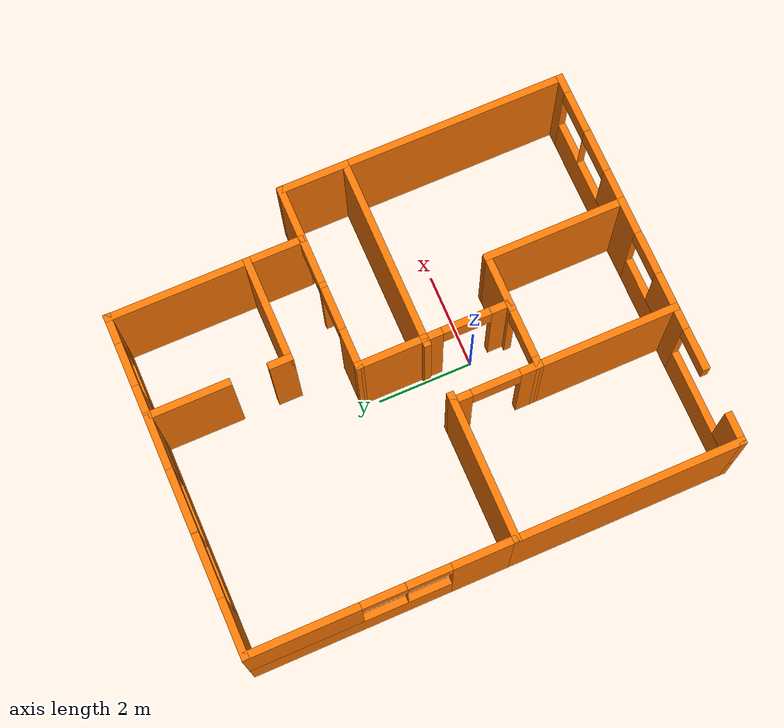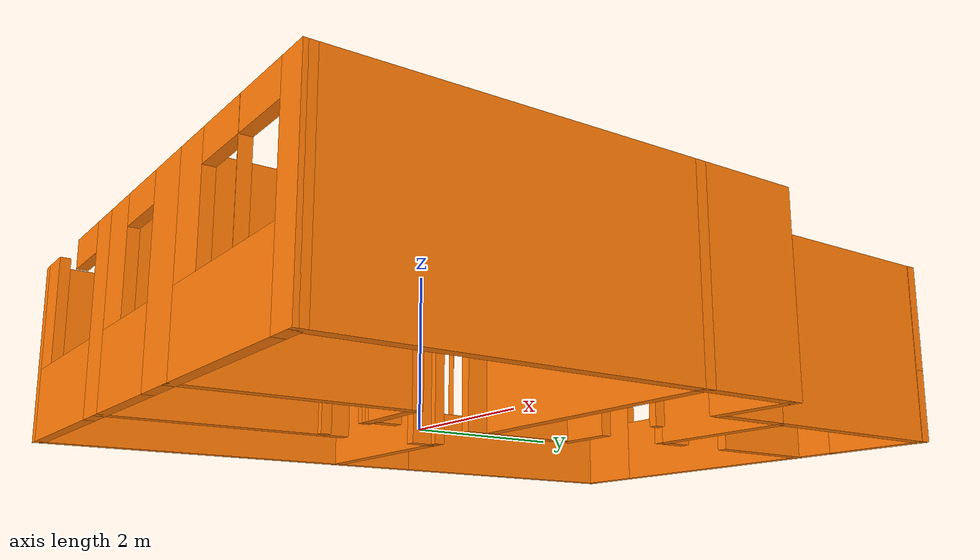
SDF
<?xml version='1.0'?>
<sdf version='1.6'>
  <model name='Berkach2'>
    <pose frame=''>0.008658 1.31545 0 0 -0 0</pose>
    <link name='Wall_111'>
      <collision name='Wall_111_Collision'>
        <geometry>
          <box>
            <size>4.76157 0.15 2.5</size>
          </box>
        </geometry>
        <pose frame=''>0 0 1.25 0 -0 0</pose>
      </collision>
      <visual name='Wall_111_Visual'>
        <pose frame=''>0 0 1.25 0 -0 0</pose>
        <geometry>
          <box>
            <size>4.76157 0.15 2.5</size>
          </box>
        </geometry>
        <material>
          <script>
            <uri>file://media/materials/scripts/gazebo.material</uri>
            <name>Gazebo/Grey</name>
          </script>
          <ambient>0.996078 0.47451 0.0196078 1</ambient>
        </material>
      </visual>
      <pose frame=''>4.02234 -2.67145 0 0 0 -1.5708</pose>
    </link>
    <link name='Wall_112'>
      <pose frame=''>2.59998 -4.97737 0 0 -0 3.14153</pose>
      <visual name='Wall_112_Visual_0'>
        <pose frame=''>-1.29221 0 1.25 0 -0 0</pose>
        <geometry>
          <box>
            <size>0.410287 0.15 2.5</size>
          </box>
        </geometry>
        <material>
          <script>
            <uri>file://media/materials/scripts/gazebo.material</uri>
            <name>Gazebo/Grey</name>
          </script>
          <ambient>0.996078 0.47451 0.0196078 1</ambient>
        </material>
      </visual>
      <collision name='Wall_112_Collision_0'>
        <geometry>
          <box>
            <size>0.410287 0.15 2.5</size>
          </box>
        </geometry>
        <pose frame=''>-1.29221 0 1.25 0 -0 0</pose>
      </collision>
      <visual name='Wall_112_Visual_1'>
        <pose frame=''>0.205143 0 0.5 0 -0 0</pose>
        <geometry>
          <box>
            <size>2.58443 0.15 1</size>
          </box>
        </geometry>
        <material>
          <script>
            <uri>file://media/materials/scripts/gazebo.material</uri>
            <name>Gazebo/Grey</name>
          </script>
          <ambient>0.996078 0.47451 0.0196078 1</ambient>
        </material>
      </visual>
      <collision name='Wall_112_Collision_1'>
        <geometry>
          <box>
            <size>2.58443 0.15 1</size>
          </box>
        </geometry>
        <pose frame=''>0.205143 0 0.5 0 -0 0</pose>
      </collision>
      <visual name='Wall_112_Visual_2'>
        <pose frame=''>-0.184502 0 1.75 0 -0 0</pose>
        <geometry>
          <box>
            <size>0.005138 0.15 1.5</size>
          </box>
        </geometry>
        <material>
          <script>
            <uri>file://media/materials/scripts/gazebo.material</uri>
            <name>Gazebo/Grey</name>
          </script>
          <ambient>0.996078 0.47451 0.0196078 1</ambient>
        </material>
      </visual>
      <collision name='Wall_112_Collision_2'>
        <geometry>
          <box>
            <size>0.005138 0.15 1.5</size>
          </box>
        </geometry>
        <pose frame=''>-0.184502 0 1.75 0 -0 0</pose>
      </collision>
      <visual name='Wall_112_Visual_3'>
        <pose frame=''>1.10771 0 1.75 0 -0 0</pose>
        <geometry>
          <box>
            <size>0.779291 0.15 1.5</size>
          </box>
        </geometry>
        <material>
          <script>
            <uri>file://media/materials/scripts/gazebo.material</uri>
            <name>Gazebo/Grey</name>
          </script>
          <ambient>0.996078 0.47451 0.0196078 1</ambient>
        </material>
      </visual>
      <collision name='Wall_112_Collision_3'>
        <geometry>
          <box>
            <size>0.779291 0.15 1.5</size>
          </box>
        </geometry>
        <pose frame=''>1.10771 0 1.75 0 -0 0</pose>
      </collision>
      <visual name='Wall_112_Visual_4'>
        <pose frame=''>-0.637071 0 2.3 0 -0 0</pose>
        <geometry>
          <box>
            <size>0.9 0.15 0.4</size>
          </box>
        </geometry>
        <material>
          <script>
            <uri>file://media/materials/scripts/gazebo.material</uri>
            <name>Gazebo/Grey</name>
          </script>
          <ambient>0.996078 0.47451 0.0196078 1</ambient>
        </material>
      </visual>
      <collision name='Wall_112_Collision_4'>
        <geometry>
          <box>
            <size>0.9 0.15 0.4</size>
          </box>
        </geometry>
        <pose frame=''>-0.637071 0 2.3 0 -0 0</pose>
      </collision>
      <visual name='Wall_112_Visual_5'>
        <pose frame=''>0.268067 0 2.3 0 -0 0</pose>
        <geometry>
          <box>
            <size>0.9 0.15 0.4</size>
          </box>
        </geometry>
        <material>
          <script>
            <uri>file://media/materials/scripts/gazebo.material</uri>
            <name>Gazebo/Grey</name>
          </script>
          <ambient>0.996078 0.47451 0.0196078 1</ambient>
        </material>
      </visual>
      <collision name='Wall_112_Collision_5'>
        <geometry>
          <box>
            <size>0.9 0.15 0.4</size>
          </box>
        </geometry>
        <pose frame=''>0.268067 0 2.3 0 -0 0</pose>
      </collision>
    </link>
    <link name='Wall_113'>
      <collision name='Wall_113_Collision'>
        <geometry>
          <box>
            <size>3 0.15 2.5</size>
          </box>
        </geometry>
        <pose frame=''>0 0 1.25 0 -0 0</pose>
      </collision>
      <visual name='Wall_113_Visual'>
        <pose frame=''>0 0 1.25 0 -0 0</pose>
        <geometry>
          <box>
            <size>3 0.15 2.5</size>
          </box>
        </geometry>
        <material>
          <script>
            <uri>file://media/materials/scripts/gazebo.material</uri>
            <name>Gazebo/Grey</name>
          </script>
          <ambient>0.996078 0.47451 0.0196078 1</ambient>
        </material>
      </visual>
      <pose frame=''>1.17763 -3.55229 0 0 -0 1.5708</pose>
    </link>
    <link name='Wall_114'>
      <collision name='Wall_114_Collision'>
        <geometry>
          <box>
            <size>1.16728 0.15 2.5</size>
          </box>
        </geometry>
        <pose frame=''>0 0 1.25 0 -0 0</pose>
      </collision>
      <visual name='Wall_114_Visual'>
        <pose frame=''>0 0 1.25 0 -0 0</pose>
        <geometry>
          <box>
            <size>1.16728 0.15 2.5</size>
          </box>
        </geometry>
        <material>
          <script>
            <uri>file://media/materials/scripts/gazebo.material</uri>
            <name>Gazebo/Grey</name>
          </script>
          <ambient>0.996078 0.47451 0.0196078 1</ambient>
        </material>
      </visual>
      <pose frame=''>0.668984 -2.12737 0 0 0 -3.14143</pose>
    </link>
    <link name='Wall_117'>
      <pose frame=''>0.002626 -4.97729 0 0 -0 3.14159</pose>
      <visual name='Wall_117_Visual_0'>
        <pose frame=''>-0.860145 0 1.25 0 -0 0</pose>
        <geometry>
          <box>
            <size>0.779711 0.15 2.5</size>
          </box>
        </geometry>
        <material>
          <script>
            <uri>file://media/materials/scripts/gazebo.material</uri>
            <name>Gazebo/Grey</name>
          </script>
          <ambient>0.996078 0.47451 0.0196078 1</ambient>
        </material>
      </visual>
      <collision name='Wall_117_Collision_0'>
        <geometry>
          <box>
            <size>0.779711 0.15 2.5</size>
          </box>
        </geometry>
        <pose frame=''>-0.860145 0 1.25 0 -0 0</pose>
      </collision>
      <visual name='Wall_117_Visual_1'>
        <pose frame=''>0.389855 0 0.5 0 -0 0</pose>
        <geometry>
          <box>
            <size>1.72029 0.15 1</size>
          </box>
        </geometry>
        <material>
          <script>
            <uri>file://media/materials/scripts/gazebo.material</uri>
            <name>Gazebo/Grey</name>
          </script>
          <ambient>0.996078 0.47451 0.0196078 1</ambient>
        </material>
      </visual>
      <collision name='Wall_117_Collision_1'>
        <geometry>
          <box>
            <size>1.72029 0.15 1</size>
          </box>
        </geometry>
        <pose frame=''>0.389855 0 0.5 0 -0 0</pose>
      </collision>
      <visual name='Wall_117_Visual_2'>
        <pose frame=''>0.839855 0 1.75 0 -0 0</pose>
        <geometry>
          <box>
            <size>0.820289 0.15 1.5</size>
          </box>
        </geometry>
        <material>
          <script>
            <uri>file://media/materials/scripts/gazebo.material</uri>
            <name>Gazebo/Grey</name>
          </script>
          <ambient>0.996078 0.47451 0.0196078 1</ambient>
        </material>
      </visual>
      <collision name='Wall_117_Collision_2'>
        <geometry>
          <box>
            <size>0.820289 0.15 1.5</size>
          </box>
        </geometry>
        <pose frame=''>0.839855 0 1.75 0 -0 0</pose>
      </collision>
      <visual name='Wall_117_Visual_3'>
        <pose frame=''>-0.020289 0 2.3 0 -0 0</pose>
        <geometry>
          <box>
            <size>0.9 0.15 0.4</size>
          </box>
        </geometry>
        <material>
          <script>
            <uri>file://media/materials/scripts/gazebo.material</uri>
            <name>Gazebo/Grey</name>
          </script>
          <ambient>0.996078 0.47451 0.0196078 1</ambient>
        </material>
      </visual>
      <collision name='Wall_117_Collision_3'>
        <geometry>
          <box>
            <size>0.9 0.15 0.4</size>
          </box>
        </geometry>
        <pose frame=''>-0.020289 0 2.3 0 -0 0</pose>
      </collision>
    </link>
    <link name='Wall_118'>
      <collision name='Wall_118_Collision'>
        <geometry>
          <box>
            <size>3 0.15 2.5</size>
          </box>
        </geometry>
        <pose frame=''>0 0 1.25 0 -0 0</pose>
      </collision>
      <visual name='Wall_118_Visual'>
        <pose frame=''>0 0 1.25 0 -0 0</pose>
        <geometry>
          <box>
            <size>3 0.15 2.5</size>
          </box>
        </geometry>
        <material>
          <script>
            <uri>file://media/materials/scripts/gazebo.material</uri>
            <name>Gazebo/Grey</name>
          </script>
          <ambient>0.996078 0.47451 0.0196078 1</ambient>
        </material>
      </visual>
      <pose frame=''>-1.17237 -3.55229 0 0 -0 1.5708</pose>
    </link>
    <link name='Wall_120'>
      <pose frame=''>-2.59737 -4.97729 0 0 -0 3.14159</pose>
      <visual name='Wall_120_Visual_0'>
        <pose frame=''>-1.22733 0 1.25 0 -0 0</pose>
        <geometry>
          <box>
            <size>0.545347 0.15 2.5</size>
          </box>
        </geometry>
        <material>
          <script>
            <uri>file://media/materials/scripts/gazebo.material</uri>
            <name>Gazebo/Grey</name>
          </script>
          <ambient>0.996078 0.47451 0.0196078 1</ambient>
        </material>
      </visual>
      <collision name='Wall_120_Collision_0'>
        <geometry>
          <box>
            <size>0.545347 0.15 2.5</size>
          </box>
        </geometry>
        <pose frame=''>-1.22733 0 1.25 0 -0 0</pose>
      </collision>
      <visual name='Wall_120_Visual_1'>
        <pose frame=''>0.272673 0 0.5 0 -0 0</pose>
        <geometry>
          <box>
            <size>2.45465 0.15 1</size>
          </box>
        </geometry>
        <material>
          <script>
            <uri>file://media/materials/scripts/gazebo.material</uri>
            <name>Gazebo/Grey</name>
          </script>
          <ambient>0.996078 0.47451 0.0196078 1</ambient>
        </material>
      </visual>
      <collision name='Wall_120_Collision_1'>
        <geometry>
          <box>
            <size>2.45465 0.15 1</size>
          </box>
        </geometry>
        <pose frame=''>0.272673 0 0.5 0 -0 0</pose>
      </collision>
      <visual name='Wall_120_Visual_2'>
        <pose frame=''>1.16358 0 1.75 0 -0 0</pose>
        <geometry>
          <box>
            <size>0.67284 0.15 1.5</size>
          </box>
        </geometry>
        <material>
          <script>
            <uri>file://media/materials/scripts/gazebo.material</uri>
            <name>Gazebo/Grey</name>
          </script>
          <ambient>0.996078 0.47451 0.0196078 1</ambient>
        </material>
      </visual>
      <collision name='Wall_120_Collision_2'>
        <geometry>
          <box>
            <size>0.67284 0.15 1.5</size>
          </box>
        </geometry>
        <pose frame=''>1.16358 0 1.75 0 -0 0</pose>
      </collision>
      <visual name='Wall_120_Visual_3'>
        <pose frame=''>-0.513747 0 2.3 0 -0 0</pose>
        <geometry>
          <box>
            <size>0.881813 0.15 0.4</size>
          </box>
        </geometry>
        <material>
          <script>
            <uri>file://media/materials/scripts/gazebo.material</uri>
            <name>Gazebo/Grey</name>
          </script>
          <ambient>0.996078 0.47451 0.0196078 1</ambient>
        </material>
      </visual>
      <collision name='Wall_120_Collision_3'>
        <geometry>
          <box>
            <size>0.881813 0.15 0.4</size>
          </box>
        </geometry>
        <pose frame=''>-0.513747 0 2.3 0 -0 0</pose>
      </collision>
    </link>
    <link name='Wall_121'>
      <collision name='Wall_121_Collision'>
        <geometry>
          <box>
            <size>4.75 0.15 2.5</size>
          </box>
        </geometry>
        <pose frame=''>0 0 1.25 0 -0 0</pose>
      </collision>
      <visual name='Wall_121_Visual'>
        <pose frame=''>0 0 1.25 0 -0 0</pose>
        <geometry>
          <box>
            <size>4.75 0.15 2.5</size>
          </box>
        </geometry>
        <material>
          <script>
            <uri>file://media/materials/scripts/gazebo.material</uri>
            <name>Gazebo/Grey</name>
          </script>
          <ambient>0.996078 0.47451 0.0196078 1</ambient>
        </material>
      </visual>
      <pose frame=''>-4.02237 -2.67729 0 0 -0 1.5708</pose>
    </link>
    <link name='Wall_122'>
      <collision name='Wall_122_Collision'>
        <geometry>
          <box>
            <size>3 0.15 2.5</size>
          </box>
        </geometry>
        <pose frame=''>0 0 1.25 0 -0 0</pose>
      </collision>
      <visual name='Wall_122_Visual'>
        <pose frame=''>0 0 1.25 0 -0 0</pose>
        <geometry>
          <box>
            <size>3 0.15 2.5</size>
          </box>
        </geometry>
        <material>
          <script>
            <uri>file://media/materials/scripts/gazebo.material</uri>
            <name>Gazebo/Grey</name>
          </script>
          <ambient>0.996078 0.47451 0.0196078 1</ambient>
        </material>
      </visual>
      <pose frame=''>-2.59737 -0.377287 0 0 -0 0</pose>
    </link>
    <link name='Wall_125'>
      <collision name='Wall_125_Collision'>
        <geometry>
          <box>
            <size>4.01206 0.15 2.5</size>
          </box>
        </geometry>
        <pose frame=''>0 0 1.25 0 -0 0</pose>
      </collision>
      <visual name='Wall_125_Visual'>
        <pose frame=''>0 0 1.25 0 -0 0</pose>
        <geometry>
          <box>
            <size>4.01206 0.15 2.5</size>
          </box>
        </geometry>
        <material>
          <script>
            <uri>file://media/materials/scripts/gazebo.material</uri>
            <name>Gazebo/Grey</name>
          </script>
          <ambient>0.996078 0.47451 0.0196078 1</ambient>
        </material>
      </visual>
      <pose frame=''>2.09134 -0.365453 0 0 -0 3.14159</pose>
    </link>
    <link name='Wall_137'>
      <collision name='Wall_137_Collision'>
        <geometry>
          <box>
            <size>0.25 0.15 2.5</size>
          </box>
        </geometry>
        <pose frame=''>0 0 1.25 0 -0 0</pose>
      </collision>
      <visual name='Wall_137_Visual'>
        <pose frame=''>0 0 1.25 0 -0 0</pose>
        <geometry>
          <box>
            <size>0.25 0.15 2.5</size>
          </box>
        </geometry>
        <material>
          <script>
            <uri>file://media/materials/scripts/gazebo.material</uri>
            <name>Gazebo/Grey</name>
          </script>
          <ambient>0.996078 0.47451 0.0196078 1</ambient>
        </material>
      </visual>
      <pose frame=''>-1.12237 -0.377287 0 0 -0 0</pose>
    </link>
    <link name='Wall_139'>
      <collision name='Wall_139_Collision'>
        <geometry>
          <box>
            <size>0.25 0.15 2.5</size>
          </box>
        </geometry>
        <pose frame=''>0 0 1.25 0 -0 0</pose>
      </collision>
      <visual name='Wall_139_Visual'>
        <pose frame=''>0 0 1.25 0 -0 0</pose>
        <geometry>
          <box>
            <size>0.25 0.15 2.5</size>
          </box>
        </geometry>
        <material>
          <script>
            <uri>file://media/materials/scripts/gazebo.material</uri>
            <name>Gazebo/Grey</name>
          </script>
          <ambient>0.996078 0.47451 0.0196078 1</ambient>
        </material>
      </visual>
      <pose frame=''>0.11031 -0.365587 0 0 0 -3.13891</pose>
    </link>
    <link name='Wall_144'>
      <pose frame=''>-4.02237 2.29771 0 0 -0 1.5708</pose>
      <visual name='Wall_144_Visual_0'>
        <pose frame=''>-2.06888 0 1.25 0 -0 0</pose>
        <geometry>
          <box>
            <size>1.36224 0.15 2.5</size>
          </box>
        </geometry>
        <material>
          <script>
            <uri>file://media/materials/scripts/gazebo.material</uri>
            <name>Gazebo/Grey</name>
          </script>
          <ambient>0.996078 0.47451 0.0196078 1</ambient>
        </material>
      </visual>
      <collision name='Wall_144_Collision_0'>
        <geometry>
          <box>
            <size>1.36224 0.15 2.5</size>
          </box>
        </geometry>
        <pose frame=''>-2.06888 0 1.25 0 -0 0</pose>
      </collision>
      <visual name='Wall_144_Visual_1'>
        <pose frame=''>0.681119 0 0.5 0 -0 0</pose>
        <geometry>
          <box>
            <size>4.13776 0.15 1</size>
          </box>
        </geometry>
        <material>
          <script>
            <uri>file://media/materials/scripts/gazebo.material</uri>
            <name>Gazebo/Grey</name>
          </script>
          <ambient>0.996078 0.47451 0.0196078 1</ambient>
        </material>
      </visual>
      <collision name='Wall_144_Collision_1'>
        <geometry>
          <box>
            <size>4.13776 0.15 1</size>
          </box>
        </geometry>
        <pose frame=''>0.681119 0 0.5 0 -0 0</pose>
      </collision>
      <visual name='Wall_144_Visual_2'>
        <pose frame=''>-0.486405 0 1.75 0 -0 0</pose>
        <geometry>
          <box>
            <size>0.002712 0.15 1.5</size>
          </box>
        </geometry>
        <material>
          <script>
            <uri>file://media/materials/scripts/gazebo.material</uri>
            <name>Gazebo/Grey</name>
          </script>
          <ambient>0.996078 0.47451 0.0196078 1</ambient>
        </material>
      </visual>
      <collision name='Wall_144_Collision_2'>
        <geometry>
          <box>
            <size>0.002712 0.15 1.5</size>
          </box>
        </geometry>
        <pose frame=''>-0.486405 0 1.75 0 -0 0</pose>
      </collision>
      <visual name='Wall_144_Visual_3'>
        <pose frame=''>1.58248 0 1.75 0 -0 0</pose>
        <geometry>
          <box>
            <size>2.33505 0.15 1.5</size>
          </box>
        </geometry>
        <material>
          <script>
            <uri>file://media/materials/scripts/gazebo.material</uri>
            <name>Gazebo/Grey</name>
          </script>
          <ambient>0.996078 0.47451 0.0196078 1</ambient>
        </material>
      </visual>
      <collision name='Wall_144_Collision_3'>
        <geometry>
          <box>
            <size>2.33505 0.15 1.5</size>
          </box>
        </geometry>
        <pose frame=''>1.58248 0 1.75 0 -0 0</pose>
      </collision>
      <visual name='Wall_144_Visual_4'>
        <pose frame=''>-0.937761 0 2.3 0 -0 0</pose>
        <geometry>
          <box>
            <size>0.9 0.15 0.4</size>
          </box>
        </geometry>
        <material>
          <script>
            <uri>file://media/materials/scripts/gazebo.material</uri>
            <name>Gazebo/Grey</name>
          </script>
          <ambient>0.996078 0.47451 0.0196078 1</ambient>
        </material>
      </visual>
      <collision name='Wall_144_Collision_4'>
        <geometry>
          <box>
            <size>0.9 0.15 0.4</size>
          </box>
        </geometry>
        <pose frame=''>-0.937761 0 2.3 0 -0 0</pose>
      </collision>
      <visual name='Wall_144_Visual_5'>
        <pose frame=''>-0.03505 0 2.3 0 -0 0</pose>
        <geometry>
          <box>
            <size>0.9 0.15 0.4</size>
          </box>
        </geometry>
        <material>
          <script>
            <uri>file://media/materials/scripts/gazebo.material</uri>
            <name>Gazebo/Grey</name>
          </script>
          <ambient>0.996078 0.47451 0.0196078 1</ambient>
        </material>
      </visual>
      <collision name='Wall_144_Collision_5'>
        <geometry>
          <box>
            <size>0.9 0.15 0.4</size>
          </box>
        </geometry>
        <pose frame=''>-0.03505 0 2.3 0 -0 0</pose>
      </collision>
    </link>
    <link name='Wall_145'>
      <pose frame=''>-1.59737 4.97271 0 0 -0 0</pose>
      <visual name='Wall_145_Visual_0'>
        <pose frame=''>-1.89387 0 1.25 0 -0 0</pose>
        <geometry>
          <box>
            <size>1.21226 0.15 2.5</size>
          </box>
        </geometry>
        <material>
          <script>
            <uri>file://media/materials/scripts/gazebo.material</uri>
            <name>Gazebo/Grey</name>
          </script>
          <ambient>0.996078 0.47451 0.0196078 1</ambient>
        </material>
      </visual>
      <collision name='Wall_145_Collision_0'>
        <geometry>
          <box>
            <size>1.21226 0.15 2.5</size>
          </box>
        </geometry>
        <pose frame=''>-1.89387 0 1.25 0 -0 0</pose>
      </collision>
      <visual name='Wall_145_Visual_1'>
        <pose frame=''>0.606127 0 0.5 0 -0 0</pose>
        <geometry>
          <box>
            <size>3.78775 0.15 1</size>
          </box>
        </geometry>
        <material>
          <script>
            <uri>file://media/materials/scripts/gazebo.material</uri>
            <name>Gazebo/Grey</name>
          </script>
          <ambient>0.996078 0.47451 0.0196078 1</ambient>
        </material>
      </visual>
      <collision name='Wall_145_Collision_1'>
        <geometry>
          <box>
            <size>3.78775 0.15 1</size>
          </box>
        </geometry>
        <pose frame=''>0.606127 0 0.5 0 -0 0</pose>
      </collision>
      <visual name='Wall_145_Visual_2'>
        <pose frame=''>0.015792 0 1.75 0 -0 0</pose>
        <geometry>
          <box>
            <size>0.007074 0.15 1.5</size>
          </box>
        </geometry>
        <material>
          <script>
            <uri>file://media/materials/scripts/gazebo.material</uri>
            <name>Gazebo/Grey</name>
          </script>
          <ambient>0.996078 0.47451 0.0196078 1</ambient>
        </material>
      </visual>
      <collision name='Wall_145_Collision_2'>
        <geometry>
          <box>
            <size>0.007074 0.15 1.5</size>
          </box>
        </geometry>
        <pose frame=''>0.015792 0 1.75 0 -0 0</pose>
      </collision>
      <visual name='Wall_145_Visual_3'>
        <pose frame=''>1.90966 0 1.75 0 -0 0</pose>
        <geometry>
          <box>
            <size>1.18067 0.15 1.5</size>
          </box>
        </geometry>
        <material>
          <script>
            <uri>file://media/materials/scripts/gazebo.material</uri>
            <name>Gazebo/Grey</name>
          </script>
          <ambient>0.996078 0.47451 0.0196078 1</ambient>
        </material>
      </visual>
      <collision name='Wall_145_Collision_3'>
        <geometry>
          <box>
            <size>1.18067 0.15 1.5</size>
          </box>
        </geometry>
        <pose frame=''>1.90966 0 1.75 0 -0 0</pose>
      </collision>
      <visual name='Wall_145_Visual_4'>
        <pose frame=''>-0.637745 0 2.3 0 -0 0</pose>
        <geometry>
          <box>
            <size>1.3 0.15 0.4</size>
          </box>
        </geometry>
        <material>
          <script>
            <uri>file://media/materials/scripts/gazebo.material</uri>
            <name>Gazebo/Grey</name>
          </script>
          <ambient>0.996078 0.47451 0.0196078 1</ambient>
        </material>
      </visual>
      <collision name='Wall_145_Collision_4'>
        <geometry>
          <box>
            <size>1.3 0.15 0.4</size>
          </box>
        </geometry>
        <pose frame=''>-0.637745 0 2.3 0 -0 0</pose>
      </collision>
      <visual name='Wall_145_Visual_5'>
        <pose frame=''>0.669329 0 2.3 0 -0 0</pose>
        <geometry>
          <box>
            <size>1.3 0.15 0.4</size>
          </box>
        </geometry>
        <material>
          <script>
            <uri>file://media/materials/scripts/gazebo.material</uri>
            <name>Gazebo/Grey</name>
          </script>
          <ambient>0.996078 0.47451 0.0196078 1</ambient>
        </material>
      </visual>
      <collision name='Wall_145_Collision_5'>
        <geometry>
          <box>
            <size>1.3 0.15 0.4</size>
          </box>
        </geometry>
        <pose frame=''>0.669329 0 2.3 0 -0 0</pose>
      </collision>
    </link>
    <link name='Wall_146'>
      <collision name='Wall_146_Collision'>
        <geometry>
          <box>
            <size>1.75 0.15 2.5</size>
          </box>
        </geometry>
        <pose frame=''>0 0 1.25 0 -0 0</pose>
      </collision>
      <visual name='Wall_146_Visual'>
        <pose frame=''>0 0 1.25 0 -0 0</pose>
        <geometry>
          <box>
            <size>1.75 0.15 2.5</size>
          </box>
        </geometry>
        <material>
          <script>
            <uri>file://media/materials/scripts/gazebo.material</uri>
            <name>Gazebo/Grey</name>
          </script>
          <ambient>0.996078 0.47451 0.0196078 1</ambient>
        </material>
      </visual>
      <pose frame=''>0.827626 4.17271 0 0 0 -1.5708</pose>
    </link>
    <link name='Wall_148'>
      <pose frame=''>1.87763 4.97271 0 0 -0 0</pose>
      <visual name='Wall_148_Visual_0'>
        <pose frame=''>-0.768922 0 1.25 0 -0 0</pose>
        <geometry>
          <box>
            <size>0.712156 0.15 2.5</size>
          </box>
        </geometry>
        <material>
          <script>
            <uri>file://media/materials/scripts/gazebo.material</uri>
            <name>Gazebo/Grey</name>
          </script>
          <ambient>0.996078 0.47451 0.0196078 1</ambient>
        </material>
      </visual>
      <collision name='Wall_148_Collision_0'>
        <geometry>
          <box>
            <size>0.712156 0.15 2.5</size>
          </box>
        </geometry>
        <pose frame=''>-0.768922 0 1.25 0 -0 0</pose>
      </collision>
      <visual name='Wall_148_Visual_1'>
        <pose frame=''>0.356078 0 0.5 0 -0 0</pose>
        <geometry>
          <box>
            <size>1.53784 0.15 1</size>
          </box>
        </geometry>
        <material>
          <script>
            <uri>file://media/materials/scripts/gazebo.material</uri>
            <name>Gazebo/Grey</name>
          </script>
          <ambient>0.996078 0.47451 0.0196078 1</ambient>
        </material>
      </visual>
      <collision name='Wall_148_Collision_1'>
        <geometry>
          <box>
            <size>1.53784 0.15 1</size>
          </box>
        </geometry>
        <pose frame=''>0.356078 0 0.5 0 -0 0</pose>
      </collision>
      <visual name='Wall_148_Visual_2'>
        <pose frame=''>0.806078 0 1.75 0 -0 0</pose>
        <geometry>
          <box>
            <size>0.637844 0.15 1.5</size>
          </box>
        </geometry>
        <material>
          <script>
            <uri>file://media/materials/scripts/gazebo.material</uri>
            <name>Gazebo/Grey</name>
          </script>
          <ambient>0.996078 0.47451 0.0196078 1</ambient>
        </material>
      </visual>
      <collision name='Wall_148_Collision_2'>
        <geometry>
          <box>
            <size>0.637844 0.15 1.5</size>
          </box>
        </geometry>
        <pose frame=''>0.806078 0 1.75 0 -0 0</pose>
      </collision>
      <visual name='Wall_148_Visual_3'>
        <pose frame=''>0.037156 0 2.3 0 -0 0</pose>
        <geometry>
          <box>
            <size>0.9 0.15 0.4</size>
          </box>
        </geometry>
        <material>
          <script>
            <uri>file://media/materials/scripts/gazebo.material</uri>
            <name>Gazebo/Grey</name>
          </script>
          <ambient>0.996078 0.47451 0.0196078 1</ambient>
        </material>
      </visual>
      <collision name='Wall_148_Collision_3'>
        <geometry>
          <box>
            <size>0.9 0.15 0.4</size>
          </box>
        </geometry>
        <pose frame=''>0.037156 0 2.3 0 -0 0</pose>
      </collision>
    </link>
    <link name='Wall_150'>
      <collision name='Wall_150_Collision'>
        <geometry>
          <box>
            <size>1.5 0.15 2.5</size>
          </box>
        </geometry>
        <pose frame=''>0 0 1.25 0 -0 0</pose>
      </collision>
      <visual name='Wall_150_Visual'>
        <pose frame=''>0 0 1.25 0 -0 0</pose>
        <geometry>
          <box>
            <size>1.5 0.15 2.5</size>
          </box>
        </geometry>
        <material>
          <script>
            <uri>file://media/materials/scripts/gazebo.material</uri>
            <name>Gazebo/Grey</name>
          </script>
          <ambient>0.996078 0.47451 0.0196078 1</ambient>
        </material>
      </visual>
      <pose frame=''>0.16031 0.309413 0 0 -0 1.57084</pose>
    </link>
    <link name='Wall_151'>
      <pose frame=''>2.08528 0.984279 0 0 -0 0</pose>
      <visual name='Wall_151_Visual_0'>
        <pose frame=''>-1.56909 0 1.25 0 -0 0</pose>
        <geometry>
          <box>
            <size>0.861816 0.15 2.5</size>
          </box>
        </geometry>
        <material>
          <script>
            <uri>file://media/materials/scripts/gazebo.material</uri>
            <name>Gazebo/Grey</name>
          </script>
          <ambient>0.996078 0.47451 0.0196078 1</ambient>
        </material>
      </visual>
      <collision name='Wall_151_Collision_0'>
        <geometry>
          <box>
            <size>0.861816 0.15 2.5</size>
          </box>
        </geometry>
        <pose frame=''>-1.56909 0 1.25 0 -0 0</pose>
      </collision>
      <visual name='Wall_151_Visual_1'>
        <pose frame=''>-0.181844 0 1.25 0 -0 0</pose>
        <geometry>
          <box>
            <size>0.11268 0.15 2.5</size>
          </box>
        </geometry>
        <material>
          <script>
            <uri>file://media/materials/scripts/gazebo.material</uri>
            <name>Gazebo/Grey</name>
          </script>
          <ambient>0.996078 0.47451 0.0196078 1</ambient>
        </material>
      </visual>
      <collision name='Wall_151_Collision_1'>
        <geometry>
          <box>
            <size>0.11268 0.15 2.5</size>
          </box>
        </geometry>
        <pose frame=''>-0.181844 0 1.25 0 -0 0</pose>
      </collision>
      <visual name='Wall_151_Visual_2'>
        <pose frame=''>1.38725 0 1.25 0 -0 0</pose>
        <geometry>
          <box>
            <size>1.2255 0.15 2.5</size>
          </box>
        </geometry>
        <material>
          <script>
            <uri>file://media/materials/scripts/gazebo.material</uri>
            <name>Gazebo/Grey</name>
          </script>
          <ambient>0.996078 0.47451 0.0196078 1</ambient>
        </material>
      </visual>
      <collision name='Wall_151_Collision_2'>
        <geometry>
          <box>
            <size>1.2255 0.15 2.5</size>
          </box>
        </geometry>
        <pose frame=''>1.38725 0 1.25 0 -0 0</pose>
      </collision>
      <visual name='Wall_151_Visual_3'>
        <pose frame=''>-0.688184 0 2.25 0 -0 0</pose>
        <geometry>
          <box>
            <size>0.9 0.15 0.5</size>
          </box>
        </geometry>
        <material>
          <script>
            <uri>file://media/materials/scripts/gazebo.material</uri>
            <name>Gazebo/Grey</name>
          </script>
          <ambient>0.996078 0.47451 0.0196078 1</ambient>
        </material>
      </visual>
      <collision name='Wall_151_Collision_3'>
        <geometry>
          <box>
            <size>0.9 0.15 0.5</size>
          </box>
        </geometry>
        <pose frame=''>-0.688184 0 2.25 0 -0 0</pose>
      </collision>
      <visual name='Wall_151_Visual_4'>
        <pose frame=''>0.324496 0 2.25 0 -0 0</pose>
        <geometry>
          <box>
            <size>0.9 0.15 0.5</size>
          </box>
        </geometry>
        <material>
          <script>
            <uri>file://media/materials/scripts/gazebo.material</uri>
            <name>Gazebo/Grey</name>
          </script>
          <ambient>0.996078 0.47451 0.0196078 1</ambient>
        </material>
      </visual>
      <collision name='Wall_151_Collision_4'>
        <geometry>
          <box>
            <size>0.9 0.15 0.5</size>
          </box>
        </geometry>
        <pose frame=''>0.324496 0 2.25 0 -0 0</pose>
      </collision>
    </link>
    <link name='Wall_159'>
      <collision name='Wall_159_Collision'>
        <geometry>
          <box>
            <size>3 0.15 2.5</size>
          </box>
        </geometry>
        <pose frame=''>0 0 1.25 0 -0 0</pose>
      </collision>
      <visual name='Wall_159_Visual'>
        <pose frame=''>0 0 1.25 0 -0 0</pose>
        <geometry>
          <box>
            <size>3 0.15 2.5</size>
          </box>
        </geometry>
        <material>
          <script>
            <uri>file://media/materials/scripts/gazebo.material</uri>
            <name>Gazebo/Grey</name>
          </script>
          <ambient>0.996078 0.47451 0.0196078 1</ambient>
        </material>
      </visual>
      <pose frame=''>2.92111 3.55246 0 0 -0 1.5708</pose>
    </link>
    <link name='Wall_161'>
      <collision name='Wall_161_Collision'>
        <geometry>
          <box>
            <size>2.25 0.15 2.5</size>
          </box>
        </geometry>
        <pose frame=''>0 0 1.25 0 -0 0</pose>
      </collision>
      <visual name='Wall_161_Visual'>
        <pose frame=''>0 0 1.25 0 -0 0</pose>
        <geometry>
          <box>
            <size>2.25 0.15 2.5</size>
          </box>
        </geometry>
        <material>
          <script>
            <uri>file://media/materials/scripts/gazebo.material</uri>
            <name>Gazebo/Grey</name>
          </script>
          <ambient>0.996078 0.47451 0.0196078 1</ambient>
        </material>
      </visual>
      <pose frame=''>1.87111 2.12746 0 0 -0 3.14159</pose>
    </link>
    <link name='Wall_162'>
      <collision name='Wall_162_Collision'>
        <geometry>
          <box>
            <size>0.5 0.15 2.5</size>
          </box>
        </geometry>
        <pose frame=''>0 0 1.25 0 -0 0</pose>
      </collision>
      <visual name='Wall_162_Visual'>
        <pose frame=''>0 0 1.25 0 -0 0</pose>
        <geometry>
          <box>
            <size>0.5 0.15 2.5</size>
          </box>
        </geometry>
        <material>
          <script>
            <uri>file://media/materials/scripts/gazebo.material</uri>
            <name>Gazebo/Grey</name>
          </script>
          <ambient>0.996078 0.47451 0.0196078 1</ambient>
        </material>
      </visual>
      <pose frame=''>0.821109 2.30246 0 0 -0 1.5708</pose>
    </link>
    <link name='Wall_164'>
      <collision name='Wall_164_Collision'>
        <geometry>
          <box>
            <size>1.25 0.15 2.5</size>
          </box>
        </geometry>
        <pose frame=''>0 0 1.25 0 -0 0</pose>
      </collision>
      <visual name='Wall_164_Visual'>
        <pose frame=''>0 0 1.25 0 -0 0</pose>
        <geometry>
          <box>
            <size>1.25 0.15 2.5</size>
          </box>
        </geometry>
        <material>
          <script>
            <uri>file://media/materials/scripts/gazebo.material</uri>
            <name>Gazebo/Grey</name>
          </script>
          <ambient>0.996078 0.47451 0.0196078 1</ambient>
        </material>
      </visual>
      <pose frame=''>2.92111 1.57746 0 0 0 -1.5708</pose>
    </link>
    <link name='Wall_166'>
      <collision name='Wall_166_Collision'>
        <geometry>
          <box>
            <size>1.5 0.15 2.5</size>
          </box>
        </geometry>
        <pose frame=''>0 0 1.25 0 -0 0</pose>
      </collision>
      <visual name='Wall_166_Visual'>
        <pose frame=''>0 0 1.25 0 -0 0</pose>
        <geometry>
          <box>
            <size>1.5 0.15 2.5</size>
          </box>
        </geometry>
        <material>
          <script>
            <uri>file://media/materials/scripts/gazebo.material</uri>
            <name>Gazebo/Grey</name>
          </script>
          <ambient>0.996078 0.47451 0.0196078 1</ambient>
        </material>
      </visual>
      <pose frame=''>4.02234 0.309547 0 0 -0 1.5708</pose>
    </link>
    <link name='Wall_173'>
      <pose frame=''>-1.17237 -1.25229 0 0 -0 1.5708</pose>
      <visual name='Wall_173_Visual_0'>
        <pose frame=''>-0.7226 0 1.25 0 -0 0</pose>
        <geometry>
          <box>
            <size>0.4548 0.15 2.5</size>
          </box>
        </geometry>
        <material>
          <script>
            <uri>file://media/materials/scripts/gazebo.material</uri>
            <name>Gazebo/Grey</name>
          </script>
          <ambient>0.996078 0.47451 0.0196078 1</ambient>
        </material>
      </visual>
      <collision name='Wall_173_Collision_0'>
        <geometry>
          <box>
            <size>0.4548 0.15 2.5</size>
          </box>
        </geometry>
        <pose frame=''>-0.7226 0 1.25 0 -0 0</pose>
      </collision>
      <visual name='Wall_173_Visual_1'>
        <pose frame=''>0.7274 0 1.25 0 -0 0</pose>
        <geometry>
          <box>
            <size>0.4452 0.15 2.5</size>
          </box>
        </geometry>
        <material>
          <script>
            <uri>file://media/materials/scripts/gazebo.material</uri>
            <name>Gazebo/Grey</name>
          </script>
          <ambient>0.996078 0.47451 0.0196078 1</ambient>
        </material>
      </visual>
      <collision name='Wall_173_Collision_1'>
        <geometry>
          <box>
            <size>0.4452 0.15 2.5</size>
          </box>
        </geometry>
        <pose frame=''>0.7274 0 1.25 0 -0 0</pose>
      </collision>
      <visual name='Wall_173_Visual_2'>
        <pose frame=''>0.0048 0 2.25 0 -0 0</pose>
        <geometry>
          <box>
            <size>1 0.15 0.5</size>
          </box>
        </geometry>
        <material>
          <script>
            <uri>file://media/materials/scripts/gazebo.material</uri>
            <name>Gazebo/Grey</name>
          </script>
          <ambient>0.996078 0.47451 0.0196078 1</ambient>
        </material>
      </visual>
      <collision name='Wall_173_Collision_2'>
        <geometry>
          <box>
            <size>1 0.15 0.5</size>
          </box>
        </geometry>
        <pose frame=''>0.0048 0 2.25 0 -0 0</pose>
      </collision>
    </link>
    <link name='Wall_175'>
      <pose frame=''>-0.506016 -2.12737 0 0 -0 3.14147</pose>
      <visual name='Wall_175_Visual_0'>
        <pose frame=''>-0.620334 0 1.25 0 -0 0</pose>
        <geometry>
          <box>
            <size>0.242048 0.15 2.5</size>
          </box>
        </geometry>
        <material>
          <script>
            <uri>file://media/materials/scripts/gazebo.material</uri>
            <name>Gazebo/Grey</name>
          </script>
          <ambient>0.996078 0.47451 0.0196078 1</ambient>
        </material>
      </visual>
      <collision name='Wall_175_Collision_0'>
        <geometry>
          <box>
            <size>0.242048 0.15 2.5</size>
          </box>
        </geometry>
        <pose frame=''>-0.620334 0 1.25 0 -0 0</pose>
      </collision>
      <visual name='Wall_175_Visual_1'>
        <pose frame=''>0.621024 0 1.25 0 -0 0</pose>
        <geometry>
          <box>
            <size>0.240668 0.15 2.5</size>
          </box>
        </geometry>
        <material>
          <script>
            <uri>file://media/materials/scripts/gazebo.material</uri>
            <name>Gazebo/Grey</name>
          </script>
          <ambient>0.996078 0.47451 0.0196078 1</ambient>
        </material>
      </visual>
      <collision name='Wall_175_Collision_1'>
        <geometry>
          <box>
            <size>0.240668 0.15 2.5</size>
          </box>
        </geometry>
        <pose frame=''>0.621024 0 1.25 0 -0 0</pose>
      </collision>
      <visual name='Wall_175_Visual_2'>
        <pose frame=''>0.00069 0 2.25 0 -0 0</pose>
        <geometry>
          <box>
            <size>1 0.15 0.5</size>
          </box>
        </geometry>
        <material>
          <script>
            <uri>file://media/materials/scripts/gazebo.material</uri>
            <name>Gazebo/Grey</name>
          </script>
          <ambient>0.996078 0.47451 0.0196078 1</ambient>
        </material>
      </visual>
      <collision name='Wall_175_Collision_2'>
        <geometry>
          <box>
            <size>1 0.15 0.5</size>
          </box>
        </geometry>
        <pose frame=''>0.00069 0 2.25 0 -0 0</pose>
      </collision>
    </link>
    <link name='Wall_177'>
      <pose frame=''>0.160342 -1.24645 0 0 0 -1.5708</pose>
      <visual name='Wall_177_Visual_0'>
        <pose frame=''>-0.735583 0 1.25 0 -0 0</pose>
        <geometry>
          <box>
            <size>0.440485 0.15 2.5</size>
          </box>
        </geometry>
        <material>
          <script>
            <uri>file://media/materials/scripts/gazebo.material</uri>
            <name>Gazebo/Grey</name>
          </script>
          <ambient>0.996078 0.47451 0.0196078 1</ambient>
        </material>
      </visual>
      <collision name='Wall_177_Collision_0'>
        <geometry>
          <box>
            <size>0.440485 0.15 2.5</size>
          </box>
        </geometry>
        <pose frame=''>-0.735583 0 1.25 0 -0 0</pose>
      </collision>
      <visual name='Wall_177_Visual_1'>
        <pose frame=''>0.720242 0 1.25 0 -0 0</pose>
        <geometry>
          <box>
            <size>0.471166 0.15 2.5</size>
          </box>
        </geometry>
        <material>
          <script>
            <uri>file://media/materials/scripts/gazebo.material</uri>
            <name>Gazebo/Grey</name>
          </script>
          <ambient>0.996078 0.47451 0.0196078 1</ambient>
        </material>
      </visual>
      <collision name='Wall_177_Collision_1'>
        <geometry>
          <box>
            <size>0.471166 0.15 2.5</size>
          </box>
        </geometry>
        <pose frame=''>0.720242 0 1.25 0 -0 0</pose>
      </collision>
      <visual name='Wall_177_Visual_2'>
        <pose frame=''>-0.015341 0 2.25 0 -0 0</pose>
        <geometry>
          <box>
            <size>1 0.15 0.5</size>
          </box>
        </geometry>
        <material>
          <script>
            <uri>file://media/materials/scripts/gazebo.material</uri>
            <name>Gazebo/Grey</name>
          </script>
          <ambient>0.996078 0.47451 0.0196078 1</ambient>
        </material>
      </visual>
      <collision name='Wall_177_Collision_2'>
        <geometry>
          <box>
            <size>1 0.15 0.5</size>
          </box>
        </geometry>
        <pose frame=''>-0.015341 0 2.25 0 -0 0</pose>
      </collision>
    </link>
    <static>1</static>
  </model>
</sdf>
